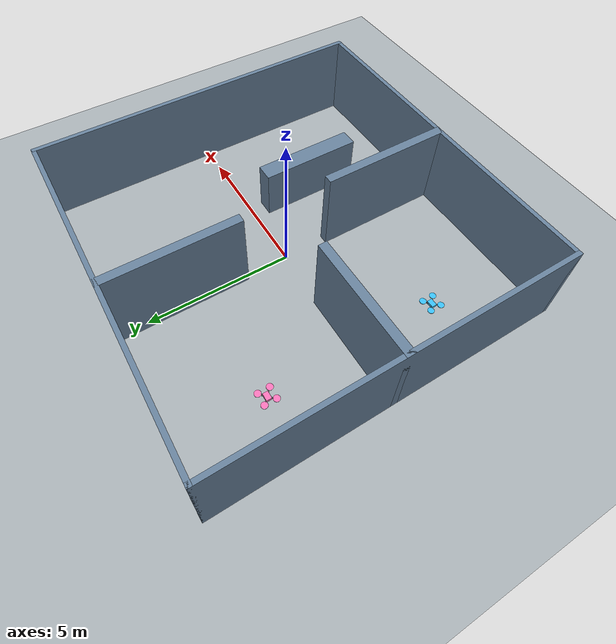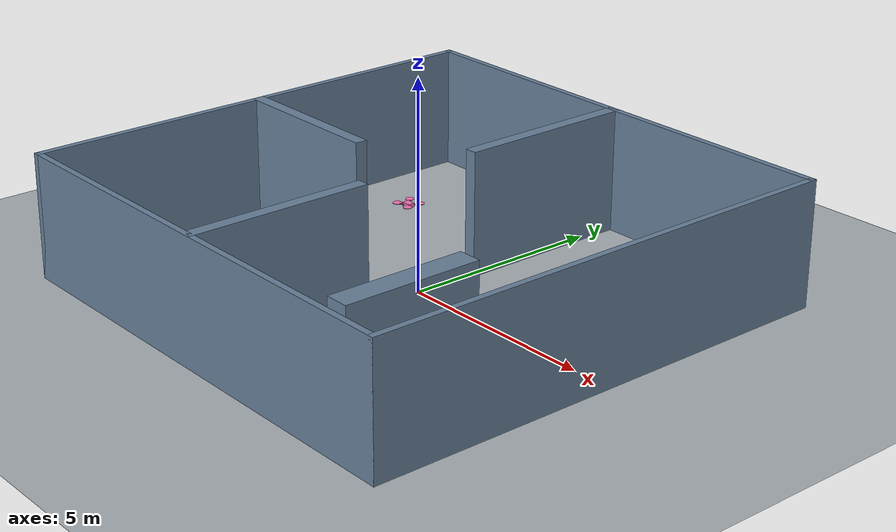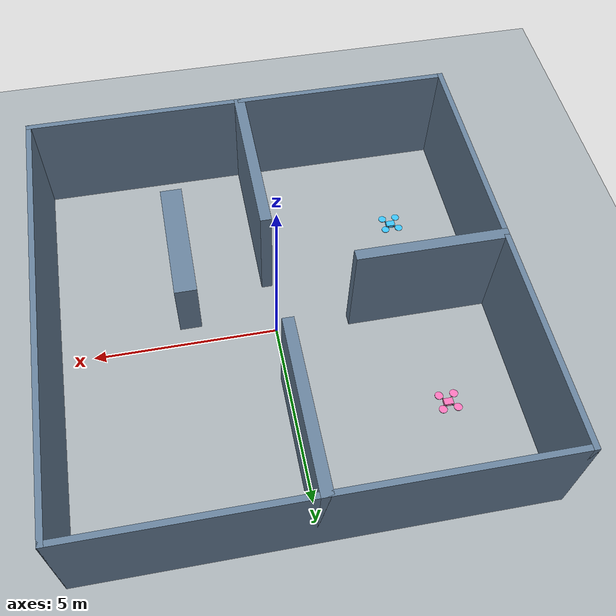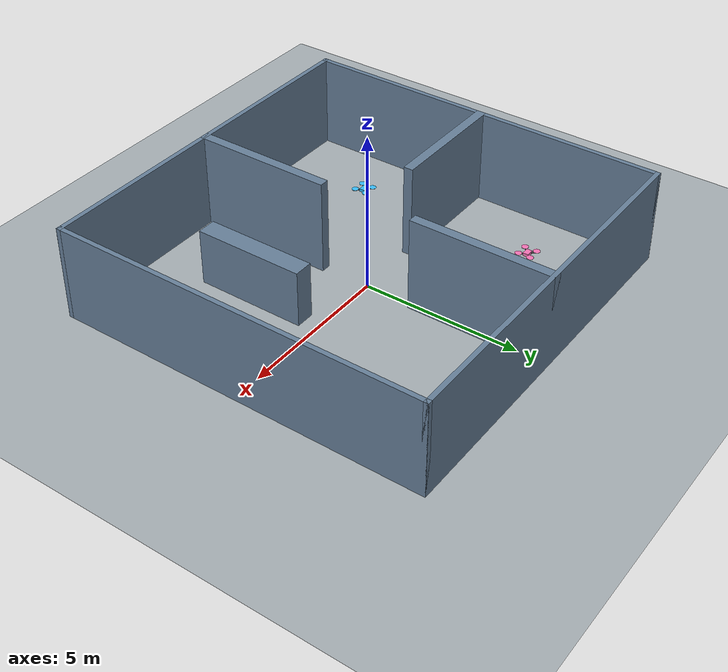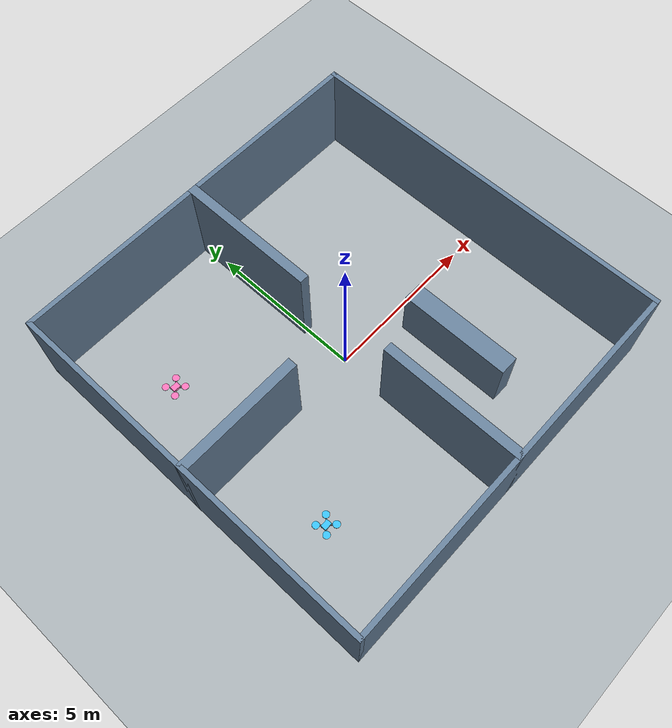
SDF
<?xml version='1.0' encoding='utf-8'?>
<sdf version="1.9"><world name="indoor">
  <gravity>0 0 -9.81</gravity>
  <physics name="physics" type="ignored"><max_step_size>0.001</max_step_size><real_time_factor>1</real_time_factor></physics>
  <plugin filename="gz-sim-physics-system" name="gz::sim::systems::Physics" />
  <plugin filename="gz-sim-user-commands-system" name="gz::sim::systems::UserCommands" />
  <plugin filename="gz-sim-scene-broadcaster-system" name="gz::sim::systems::SceneBroadcaster" />
  <plugin filename="gz-sim-contact-system" name="gz::sim::systems::Contact" />
  <plugin filename="gz-sim-imu-system" name="gz::sim::systems::Imu" />
  <scene><ambient>0.6 0.6 0.6 1</ambient><background>0.85 0.88 0.92 1</background><shadows>true</shadows></scene>
  <light name="sun" type="directional"><pose>0 0 12 0 0 0</pose><diffuse>0.8 0.8 0.8 1</diffuse><direction>-0.4 -0.4 -1</direction><cast_shadows>true</cast_shadows></light>
  <model name="ground"><static>true</static><link name="ground_link">
    <collision name="ground_collision"><geometry><plane><normal>0 0 1</normal><size>80 80</size></plane></geometry></collision>
    <visual name="ground_visual"><geometry><plane><normal>0 0 1</normal><size>80 80</size></plane></geometry><material><diffuse>0.65 0.68 0.7 1</diffuse></material></visual>
  </link></model>
<plugin filename="gz-sim-sensors-system" name="gz::sim::systems::Sensors"><render_engine>ogre2</render_engine></plugin><model name="obstacle_0"><static>true</static><link name="link"><collision name="collision"><geometry><box><size>0.15000000000000036 12.0 3.0</size></box></geometry></collision><visual name="visual"><geometry><box><size>0.15000000000000036 12.0 3.0</size></box></geometry><material><diffuse>0.4 0.5 0.6 1</diffuse></material></visual></link><pose>-5.925 0.0 1.5 0.0 0.0 0.0</pose></model><model name="obstacle_1"><static>true</static><link name="link"><collision name="collision"><geometry><box><size>0.15000000000000036 12.0 3.0</size></box></geometry></collision><visual name="visual"><geometry><box><size>0.15000000000000036 12.0 3.0</size></box></geometry><material><diffuse>0.4 0.5 0.6 1</diffuse></material></visual></link><pose>5.925 0.0 1.5 0.0 0.0 0.0</pose></model><model name="obstacle_2"><static>true</static><link name="link"><collision name="collision"><geometry><box><size>12.0 0.15000000000000036 3.0</size></box></geometry></collision><visual name="visual"><geometry><box><size>12.0 0.15000000000000036 3.0</size></box></geometry><material><diffuse>0.4 0.5 0.6 1</diffuse></material></visual></link><pose>0.0 -5.925 1.5 0.0 0.0 0.0</pose></model><model name="obstacle_3"><static>true</static><link name="link"><collision name="collision"><geometry><box><size>12.0 0.15000000000000036 3.0</size></box></geometry></collision><visual name="visual"><geometry><box><size>12.0 0.15000000000000036 3.0</size></box></geometry><material><diffuse>0.4 0.5 0.6 1</diffuse></material></visual></link><pose>0.0 5.925 1.5 0.0 0.0 0.0</pose></model><model name="obstacle_4"><static>true</static><link name="link"><collision name="collision"><geometry><box><size>0.3 4.5 3.0</size></box></geometry></collision><visual name="visual"><geometry><box><size>0.3 4.5 3.0</size></box></geometry><material><diffuse>0.4 0.5 0.6 1</diffuse></material></visual></link><pose>0.0 -3.75 1.5 0.0 0.0 0.0</pose></model><model name="obstacle_5"><static>true</static><link name="link"><collision name="collision"><geometry><box><size>0.3 4.5 3.0</size></box></geometry></collision><visual name="visual"><geometry><box><size>0.3 4.5 3.0</size></box></geometry><material><diffuse>0.4 0.5 0.6 1</diffuse></material></visual></link><pose>0.0 3.75 1.5 0.0 0.0 0.0</pose></model><model name="obstacle_6"><static>true</static><link name="link"><collision name="collision"><geometry><box><size>4.0 0.3 3.0</size></box></geometry></collision><visual name="visual"><geometry><box><size>4.0 0.3 3.0</size></box></geometry><material><diffuse>0.4 0.5 0.6 1</diffuse></material></visual></link><pose>-4.0 0.0 1.5 0.0 0.0 0.0</pose></model><model name="obstacle_7"><static>true</static><link name="link"><collision name="collision"><geometry><box><size>0.6000000000000001 3.5 1.8</size></box></geometry></collision><visual name="visual"><geometry><box><size>0.6000000000000001 3.5 1.8</size></box></geometry><material><diffuse>0.4 0.5 0.6 1</diffuse></material></visual></link><pose>2.3 -2.25 0.9 0.0 0.0 0.0</pose></model><model name="drone_0">
  <link name="base_link">
    <inertial><mass>1.0</mass><inertia><ixx>0.01</ixx><iyy>0.01</iyy><izz>0.02</izz></inertia></inertial>
    <collision name="hull"><geometry><box><size>0.64 0.64 0.16</size></box></geometry></collision>
    <visual name="body"><geometry><box><size>0.25 0.18 0.10</size></box></geometry><material><diffuse>0.2196078431372549 0.7411764705882353 0.9725490196078431 1.0</diffuse></material></visual>
    <visual name="arm_x"><geometry><box><size>0.57 0.035 0.025</size></box></geometry><pose>0 0 0 0 0 0.785398</pose><material><diffuse>0.4 0.4 0.4 1</diffuse></material></visual>
    <visual name="arm_y"><geometry><box><size>0.57 0.035 0.025</size></box></geometry><pose>0 0 0 0 0 -0.785398</pose><material><diffuse>0.4 0.4 0.4 1</diffuse></material></visual>
    <visual name="rotor_0"><pose>-0.2 0.2 0.035 0 0 0</pose><geometry><cylinder><radius>0.11</radius><length>0.012</length></cylinder></geometry><material><diffuse>0.2196078431372549 0.7411764705882353 0.9725490196078431 1.0</diffuse></material></visual>
    <visual name="rotor_1"><pose>-0.2 -0.2 0.035 0 0 0</pose><geometry><cylinder><radius>0.11</radius><length>0.012</length></cylinder></geometry><material><diffuse>0.2196078431372549 0.7411764705882353 0.9725490196078431 1.0</diffuse></material></visual>
    <visual name="rotor_2"><pose>0.2 -0.2 0.035 0 0 0</pose><geometry><cylinder><radius>0.11</radius><length>0.012</length></cylinder></geometry><material><diffuse>0.2196078431372549 0.7411764705882353 0.9725490196078431 1.0</diffuse></material></visual>
    <visual name="rotor_3"><pose>0.2 0.2 0.035 0 0 0</pose><geometry><cylinder><radius>0.11</radius><length>0.012</length></cylinder></geometry><material><diffuse>0.2196078431372549 0.7411764705882353 0.9725490196078431 1.0</diffuse></material></visual>
    <sensor name="contact" type="contact"><always_on>true</always_on><update_rate>50</update_rate><topic>/drone_0/contacts</topic><contact><collision>hull</collision></contact></sensor>
    <sensor name="imu" type="imu"><always_on>true</always_on><update_rate>100</update_rate><topic>/drone_0/imu</topic></sensor>
  <sensor name="exploration_lidar" type="gpu_lidar"><pose>0 0 0.4 0 0 0</pose><topic>/drone_0/lidar</topic><update_rate>5</update_rate><always_on>true</always_on><lidar><scan><horizontal><samples>181</samples><resolution>1</resolution><min_angle>-1.0471975511965976</min_angle><max_angle>1.0471975511965976</max_angle></horizontal><vertical><samples>31</samples><resolution>1</resolution><min_angle>-1.0471975511965976</min_angle><max_angle>1.0471975511965976</max_angle></vertical></scan><range><min>0.1</min><max>4.5</max><resolution>0.01</resolution></range><noise><type>gaussian</type><mean>0</mean><stddev>0.005</stddev></noise></lidar></sensor></link>
  <plugin filename="annual_motor_system" name="annual::MotorSystem"><motor_time_constant>0.025</motor_time_constant></plugin>
<pose>-4.0 -3.0 0.1 0.0 0.0 0.0</pose></model><model name="drone_1">
  <link name="base_link">
    <inertial><mass>1.0</mass><inertia><ixx>0.01</ixx><iyy>0.01</iyy><izz>0.02</izz></inertia></inertial>
    <collision name="hull"><geometry><box><size>0.64 0.64 0.16</size></box></geometry></collision>
    <visual name="body"><geometry><box><size>0.25 0.18 0.10</size></box></geometry><material><diffuse>0.9568627450980393 0.4470588235294118 0.7137254901960784 1.0</diffuse></material></visual>
    <visual name="arm_x"><geometry><box><size>0.57 0.035 0.025</size></box></geometry><pose>0 0 0 0 0 0.785398</pose><material><diffuse>0.4 0.4 0.4 1</diffuse></material></visual>
    <visual name="arm_y"><geometry><box><size>0.57 0.035 0.025</size></box></geometry><pose>0 0 0 0 0 -0.785398</pose><material><diffuse>0.4 0.4 0.4 1</diffuse></material></visual>
    <visual name="rotor_0"><pose>-0.2 0.2 0.035 0 0 0</pose><geometry><cylinder><radius>0.11</radius><length>0.012</length></cylinder></geometry><material><diffuse>0.9568627450980393 0.4470588235294118 0.7137254901960784 1.0</diffuse></material></visual>
    <visual name="rotor_1"><pose>-0.2 -0.2 0.035 0 0 0</pose><geometry><cylinder><radius>0.11</radius><length>0.012</length></cylinder></geometry><material><diffuse>0.9568627450980393 0.4470588235294118 0.7137254901960784 1.0</diffuse></material></visual>
    <visual name="rotor_2"><pose>0.2 -0.2 0.035 0 0 0</pose><geometry><cylinder><radius>0.11</radius><length>0.012</length></cylinder></geometry><material><diffuse>0.9568627450980393 0.4470588235294118 0.7137254901960784 1.0</diffuse></material></visual>
    <visual name="rotor_3"><pose>0.2 0.2 0.035 0 0 0</pose><geometry><cylinder><radius>0.11</radius><length>0.012</length></cylinder></geometry><material><diffuse>0.9568627450980393 0.4470588235294118 0.7137254901960784 1.0</diffuse></material></visual>
    <sensor name="contact" type="contact"><always_on>true</always_on><update_rate>50</update_rate><topic>/drone_1/contacts</topic><contact><collision>hull</collision></contact></sensor>
    <sensor name="imu" type="imu"><always_on>true</always_on><update_rate>100</update_rate><topic>/drone_1/imu</topic></sensor>
  <sensor name="exploration_lidar" type="gpu_lidar"><pose>0 0 0.4 0 0 0</pose><topic>/drone_1/lidar</topic><update_rate>5</update_rate><always_on>true</always_on><lidar><scan><horizontal><samples>181</samples><resolution>1</resolution><min_angle>-1.0471975511965976</min_angle><max_angle>1.0471975511965976</max_angle></horizontal><vertical><samples>31</samples><resolution>1</resolution><min_angle>-1.0471975511965976</min_angle><max_angle>1.0471975511965976</max_angle></vertical></scan><range><min>0.1</min><max>4.5</max><resolution>0.01</resolution></range><noise><type>gaussian</type><mean>0</mean><stddev>0.005</stddev></noise></lidar></sensor></link>
  <plugin filename="annual_motor_system" name="annual::MotorSystem"><motor_time_constant>0.025</motor_time_constant></plugin>
<pose>-4.0 3.0 0.1 0.0 0.0 0.0</pose></model></world></sdf>
